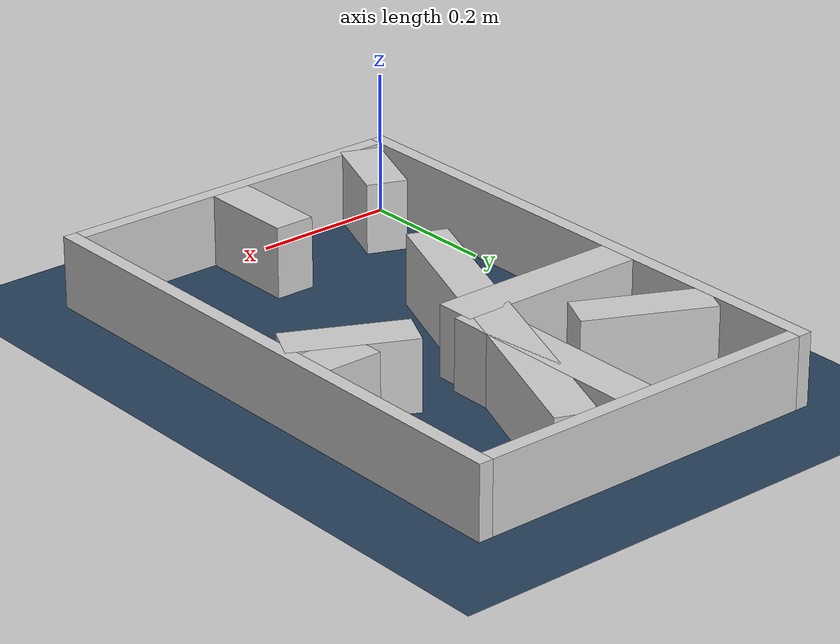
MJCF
<?xml version="1.0" ?>
<mujoco model="generated_real_template">
  <compiler angle="degree"/>
  <option timestep="0.002" integrator="implicitfast" iterations="100" cone="elliptic"/>
  <default>
    <geom density="1"/>
  </default>
  <asset>
    <texture builtin="gradient" height="3072" rgb1="0.3 0.5 0.7" rgb2="0 0 0" type="skybox" width="512"/>
    <texture builtin="checker" height="300" mark="edge" markrgb="0.8 0.8 0.8" name="groundplane" rgb1="0.2 0.3 0.4" rgb2="0.1 0.2 0.3" type="2d" width="300"/>
    <material name="groundplane" reflectance="0.2" texrepeat="5 5" texture="groundplane" texuniform="true"/>
  </asset>
  <worldbody>
    <light dir="0 0 -1" directional="true" pos="0 0 1.5"/>
    <geom name="floor" type="plane" condim="4" friction="0.5 0.005 0.001" material="groundplane" size="0 0 0.05"/>
    <body name="walls">
      <geom name="wall_boundary_left" type="box" condim="4" friction="1.0 0.005 0.0001" rgba="0.8 0.8 0.8 1" pos="-0.010000 0.387500 0.050000" euler="0 0 0.000000" size="0.010000 0.407500 0.050000"/>
      <geom name="wall_boundary_right" type="box" condim="4" friction="1.0 0.005 0.0001" rgba="0.8 0.8 0.8 1" pos="0.500000 0.387500 0.050000" euler="0 0 0.000000" size="0.010000 0.407500 0.050000"/>
      <geom name="wall_boundary_bottom" type="box" condim="4" friction="1.0 0.005 0.0001" rgba="0.8 0.8 0.8 1" pos="0.245000 -0.010000 0.050000" euler="0 0 0.000000" size="0.245000 0.010000 0.050000"/>
      <geom name="wall_boundary_top" type="box" condim="4" friction="1.0 0.005 0.0001" rgba="0.8 0.8 0.8 1" pos="0.245000 0.785000 0.050000" euler="0 0 0.000000" size="0.245000 0.010000 0.050000"/>
      <geom name="wall_inner_1_1" type="box" condim="4" friction="1.0 0.005 0.0001" rgba="0.8 0.8 0.8 1" pos="0.255571 0.068179 0.050000" euler="0 0 90.000000" size="0.068179 0.028500 0.050000"/>
      <geom name="wall_inner_1_2" type="box" condim="4" friction="1.0 0.005 0.0001" rgba="0.8 0.8 0.8 1" pos="0.255571 0.631454 0.050000" euler="0 0 90.000000" size="0.143546 0.028500 0.050000"/>
      <geom name="wall_inner_2_1" type="box" condim="4" friction="1.0 0.005 0.0001" rgba="0.8 0.8 0.8 1" pos="0.136044 0.474492 0.050000" euler="0 0 0.000000" size="0.136044 0.028500 0.050000"/>
      <geom name="wall_inner_2_2" type="box" condim="4" friction="1.0 0.005 0.0001" rgba="0.8 0.8 0.8 1" pos="0.451583 0.474492 0.050000" euler="0 0 0.000000" size="0.038417 0.028500 0.050000"/>
      <geom name="wall_inner_3_1" type="box" condim="4" friction="1.0 0.005 0.0001" rgba="0.8 0.8 0.8 1" pos="0.414053 0.444172 0.050000" euler="0 0 153.901852" size="0.084569 0.028500 0.050000"/>
      <geom name="wall_inner_3_2" type="box" condim="4" friction="1.0 0.005 0.0001" rgba="0.8 0.8 0.8 1" pos="0.080195 0.607714 0.050000" euler="0 0 153.901852" size="0.089300 0.028500 0.050000"/>
      <geom name="wall_inner_4_1" type="box" condim="4" friction="1.0 0.005 0.0001" rgba="0.8 0.8 0.8 1" pos="0.243180 0.521340 0.050000" euler="0 0 -111.710905" size="0.273028 0.028500 0.050000"/>
      <geom name="wall_inner_4_2" type="box" condim="4" friction="1.0 0.005 0.0001" rgba="0.8 0.8 0.8 1" pos="0.057890 0.055985 0.050000" euler="0 0 -111.710905" size="0.060260 0.028500 0.050000"/>
    </body>
  </worldbody>
</mujoco>
